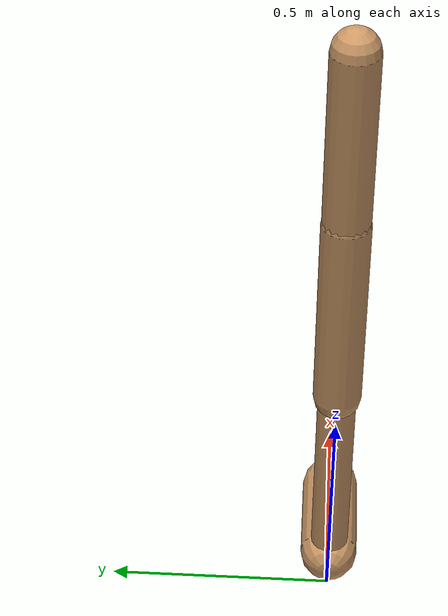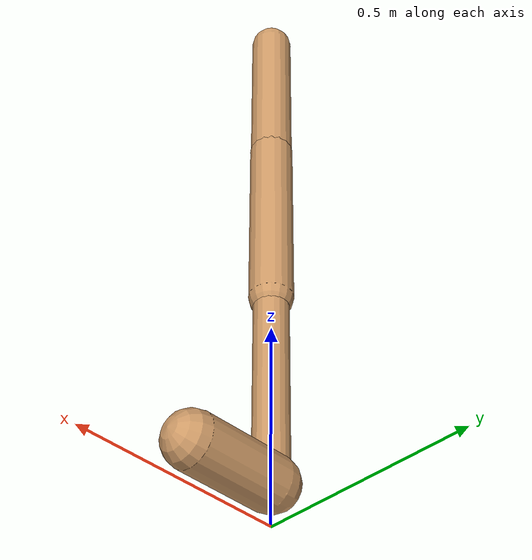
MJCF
<mujoco model="walker2d">
  <compiler angle="degree" coordinate="global" inertiafromgeom="true" />
  <default>
    <joint armature="0.01" damping=".1" limited="true" />
    <geom conaffinity="0" condim="3" contype="1" density="1000" friction="0.8 .1 .1" rgba="0.8 0.6 .4 1" />
  </default>
  <option integrator="RK4" timestep="0.002" />
  <worldbody>

    <body name="torso" pos="0 0 0.02370601208425136">
      <joint armature="0" axis="1 0 0" damping="0" limited="false" name="ignorex" pos="0 0 0" stiffness="0" type="slide" />
      <joint armature="0" axis="0 0 1" damping="0" limited="false" name="ignorez" pos="0 0 0" ref="1.25" stiffness="0" type="slide" />
      <joint armature="0" axis="0 1 0" damping="0" limited="false" name="ignorey" pos="0 0 0" stiffness="0" type="hinge" />
      <geom fromto="0 0 1.45 0 0 1.05" name="torso_geom" size="0.0503792084115223" type="capsule" />
      <body name="thigh">
        <joint axis="0 -1 0" name="thigh_joint" pos="0 0 1.05" range="-150 0" type="hinge" />
        <geom fromto="0.0 0.0 1.05 0.0 0.0 0.588770836381144" name="thigh_geom" size="0.05193943412084058" type="capsule" />
        <body name="leg" pos="0.0 0.0 -0.011229163618855953">
          <joint axis="0 -1 0" name="leg_joint" pos="0 0 0.6" range="-150 0" type="hinge" />
          <geom fromto="0.0 0.0 0.6 0.0 0.0 0.08752315153460455" name="leg_geom" size="0.041551547296672466" type="capsule" />
          <body name="foot" pos="0.0 0.0 -0.012476848465395457">
            <joint axis="0 -1 0" name="foot_joint" pos="0 0 0.1" range="-45 45" type="hinge" />
            <geom fromto="-0.0 0.0 0.1 0.2197532714730167 0.0 0.1" name="foot_geom" size="0.06395620611449004" type="capsule" />
          </body>
        </body>
      </body>

      <body name="thigh_left">
        <joint axis="0 -1 0" name="thigh_left_joint" pos="0 0 1.05" range="-150 0" type="hinge" />
        <geom fromto="0.0 0.0 1.05 0.0 0.0 0.588770836381144" name="thigh_left_geom" rgba=".7 .3 .6 1" size="0.05193943412084058" type="capsule" />
        <body name="leg_left" pos="0.0 0.0 -0.011229163618855953">
          <joint axis="0 -1 0" name="leg_left_joint" pos="0 0 0.6" range="-150 0" type="hinge" />
          <geom fromto="0.0 0.0 0.6 0.0 0.0 0.08752315153460455" name="leg_left_geom" rgba=".7 .3 .6 1" size="0.041551547296672466" type="capsule" />
          <body name="foot_left" pos="0.0 0.0 -0.012476848465395457">
            <joint axis="0 -1 0" name="foot_left_joint" pos="0 0 0.1" range="-45 45" type="hinge" />
            <geom fromto="-0.0 0.0 0.1 0.2197532714730167 0.0 0.1" name="foot_left_geom" rgba=".7 .3 .6 1" size="0.06395620611449004" type="capsule" />
          </body>
        </body>
      </body>
    </body>
  </worldbody>
  <actuator>

    <motor ctrllimited="true" ctrlrange="-1.0 1.0" gear="100" joint="thigh_joint" />
    <motor ctrllimited="true" ctrlrange="-1.0 1.0" gear="100" joint="leg_joint" />
    <motor ctrllimited="true" ctrlrange="-1.0 1.0" gear="100" joint="foot_joint" />
    <motor ctrllimited="true" ctrlrange="-1.0 1.0" gear="100" joint="thigh_left_joint" />
    <motor ctrllimited="true" ctrlrange="-1.0 1.0" gear="100" joint="leg_left_joint" />
    <motor ctrllimited="true" ctrlrange="-1.0 1.0" gear="100" joint="foot_left_joint" />

  </actuator>
</mujoco>
